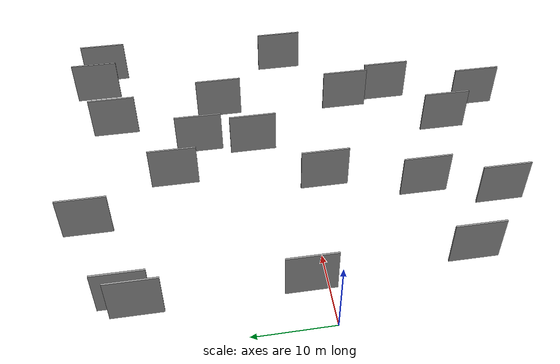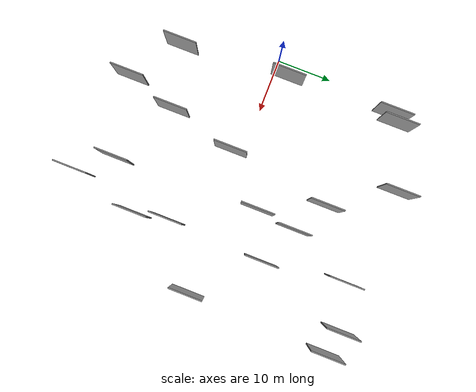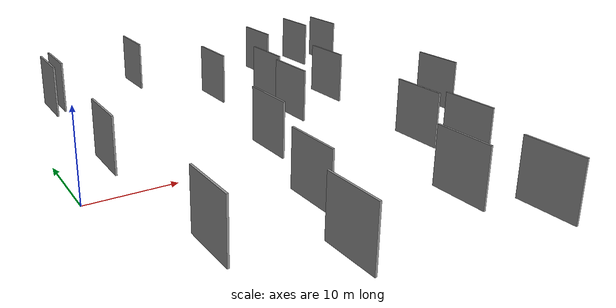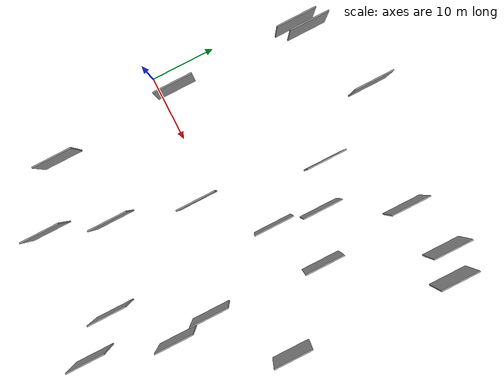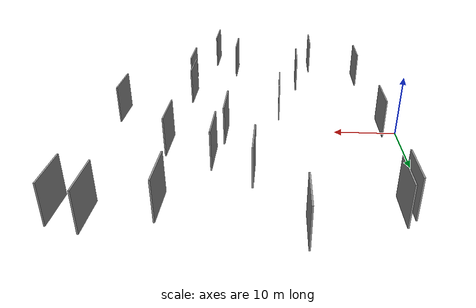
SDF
<sdf version="1.6">
 <world name="default">
  <scene>
   <sky><clouds><speed>12</speed></clouds></sky>
   <ambient>0.4 0.4 0.4 1</ambient>
   <background>0.7 0.7 0.7 1</background>
   <shadows>1</shadows>
  </scene>
  <gravity>0 0 -9.8066</gravity>
  <magnetic_field>6e-06 2.3e-05 -4.2e-05</magnetic_field>
  <physics default="0" name="default_physics" type="ode">
   <ode>
    <solver>
     <type>quick</type>
     <iters>10</iters>
     <sor>1.0</sor>
     <use_dynamic_moi_rescaling>0</use_dynamic_moi_rescaling>
    </solver>
    <constraints>
     <cfm>0</cfm>
     <erp>0.2</erp>
     <contact_max_correcting_vel>100</contact_max_correcting_vel>
     <contact_surface_layer>0.001</contact_surface_layer>
    </constraints>
   </ode>
   <max_step_size>0.004</max_step_size>
   <real_time_factor>1</real_time_factor>
   <real_time_update_rate>250</real_time_update_rate>
  </physics>
  <light name="sun" type="directional">
   <pose>0 0 10 0 0 0</pose>
   <diffuse>0.8 0.8 0.8 1</diffuse>
   <specular>0.2 0.2 0.2 1</specular>
   <attenuation>
    <range>1000</range>
    <constant>0.9</constant>
    <linear>0.01</linear>
    <quadratic>0.001</quadratic>
   </attenuation>
   <direction>-0.5 0.1 -0.9</direction>
  </light>
  <model name="grey_wall_1">
   <static>1</static>
   <pose>19.3405 -2.0208 2.5 0.000000 0.000000 1.570796</pose>
   <link name="link">
    <pose>0 0 3.00 0 0 0</pose>
    <collision name="collision"><geometry><box><size>6.00 0.2 6.00</size></box></geometry></collision>
    <visual name="visual">
     <cast_shadows>0</cast_shadows>
     <geometry><box><size>6.00 0.2 6.00</size></box></geometry>
     <material>
      <script>
       <uri>model://grey_wall/materials/scripts</uri>
       <uri>model://grey_wall/materials/textures</uri>
       <name>vrc/grey_wall</name>
      </script>
     </material>
    </visual>
   </link>
  </model>
  <model name="grey_wall_2">
   <static>1</static>
   <pose>35.4959 -13.6867 2.5 0.000000 0.000000 1.570796</pose>
   <link name="link">
    <pose>0 0 3.00 0 0 0</pose>
    <collision name="collision"><geometry><box><size>6.00 0.2 6.00</size></box></geometry></collision>
    <visual name="visual">
     <cast_shadows>0</cast_shadows>
     <geometry><box><size>6.00 0.2 6.00</size></box></geometry>
     <material>
      <script>
       <uri>model://grey_wall/materials/scripts</uri>
       <uri>model://grey_wall/materials/textures</uri>
       <name>vrc/grey_wall</name>
      </script>
     </material>
    </visual>
   </link>
  </model>
  <model name="grey_wall_3">
   <static>1</static>
   <pose>32.3080 -25.7244 2.5 0.000000 0.000000 1.570796</pose>
   <link name="link">
    <pose>0 0 3.00 0 0 0</pose>
    <collision name="collision"><geometry><box><size>6.00 0.2 6.00</size></box></geometry></collision>
    <visual name="visual">
     <cast_shadows>0</cast_shadows>
     <geometry><box><size>6.00 0.2 6.00</size></box></geometry>
     <material>
      <script>
       <uri>model://grey_wall/materials/scripts</uri>
       <uri>model://grey_wall/materials/textures</uri>
       <name>vrc/grey_wall</name>
      </script>
     </material>
    </visual>
   </link>
  </model>
  <model name="grey_wall_4">
   <static>1</static>
   <pose>22.5257 16.6328 2.5 0.000000 0.000000 1.570796</pose>
   <link name="link">
    <pose>0 0 3.00 0 0 0</pose>
    <collision name="collision"><geometry><box><size>6.00 0.2 6.00</size></box></geometry></collision>
    <visual name="visual">
     <cast_shadows>0</cast_shadows>
     <geometry><box><size>6.00 0.2 6.00</size></box></geometry>
     <material>
      <script>
       <uri>model://grey_wall/materials/scripts</uri>
       <uri>model://grey_wall/materials/textures</uri>
       <name>vrc/grey_wall</name>
      </script>
     </material>
    </visual>
   </link>
  </model>
  <model name="grey_wall_5">
   <static>1</static>
   <pose>27.3279 6.0161 2.5 0.000000 0.000000 1.570796</pose>
   <link name="link">
    <pose>0 0 3.00 0 0 0</pose>
    <collision name="collision"><geometry><box><size>6.00 0.2 6.00</size></box></geometry></collision>
    <visual name="visual">
     <cast_shadows>0</cast_shadows>
     <geometry><box><size>6.00 0.2 6.00</size></box></geometry>
     <material>
      <script>
       <uri>model://grey_wall/materials/scripts</uri>
       <uri>model://grey_wall/materials/textures</uri>
       <name>vrc/grey_wall</name>
      </script>
     </material>
    </visual>
   </link>
  </model>
  <model name="grey_wall_6">
   <static>1</static>
   <pose>35.3297 9.7608 2.5 0.000000 0.000000 1.570796</pose>
   <link name="link">
    <pose>0 0 3.00 0 0 0</pose>
    <collision name="collision"><geometry><box><size>6.00 0.2 6.00</size></box></geometry></collision>
    <visual name="visual">
     <cast_shadows>0</cast_shadows>
     <geometry><box><size>6.00 0.2 6.00</size></box></geometry>
     <material>
      <script>
       <uri>model://grey_wall/materials/scripts</uri>
       <uri>model://grey_wall/materials/textures</uri>
       <name>vrc/grey_wall</name>
      </script>
     </material>
    </visual>
   </link>
  </model>
  <model name="grey_wall_7">
   <static>1</static>
   <pose>34.4608 -7.7306 2.5 0.000000 0.000000 1.570796</pose>
   <link name="link">
    <pose>0 0 3.00 0 0 0</pose>
    <collision name="collision"><geometry><box><size>6.00 0.2 6.00</size></box></geometry></collision>
    <visual name="visual">
     <cast_shadows>0</cast_shadows>
     <geometry><box><size>6.00 0.2 6.00</size></box></geometry>
     <material>
      <script>
       <uri>model://grey_wall/materials/scripts</uri>
       <uri>model://grey_wall/materials/textures</uri>
       <name>vrc/grey_wall</name>
      </script>
     </material>
    </visual>
   </link>
  </model>
  <model name="grey_wall_8">
   <static>1</static>
   <pose>41.4975 26.4178 2.5 0.000000 0.000000 1.570796</pose>
   <link name="link">
    <pose>0 0 3.00 0 0 0</pose>
    <collision name="collision"><geometry><box><size>6.00 0.2 6.00</size></box></geometry></collision>
    <visual name="visual">
     <cast_shadows>0</cast_shadows>
     <geometry><box><size>6.00 0.2 6.00</size></box></geometry>
     <material>
      <script>
       <uri>model://grey_wall/materials/scripts</uri>
       <uri>model://grey_wall/materials/textures</uri>
       <name>vrc/grey_wall</name>
      </script>
     </material>
    </visual>
   </link>
  </model>
  <model name="grey_wall_9">
   <static>1</static>
   <pose>3.4852 2.5388 2.5 0.000000 0.000000 1.570796</pose>
   <link name="link">
    <pose>0 0 3.00 0 0 0</pose>
    <collision name="collision"><geometry><box><size>6.00 0.2 6.00</size></box></geometry></collision>
    <visual name="visual">
     <cast_shadows>0</cast_shadows>
     <geometry><box><size>6.00 0.2 6.00</size></box></geometry>
     <material>
      <script>
       <uri>model://grey_wall/materials/scripts</uri>
       <uri>model://grey_wall/materials/textures</uri>
       <name>vrc/grey_wall</name>
      </script>
     </material>
    </visual>
   </link>
  </model>
  <model name="grey_wall_10">
   <static>1</static>
   <pose>33.4839 24.0221 2.5 0.000000 0.000000 1.570796</pose>
   <link name="link">
    <pose>0 0 3.00 0 0 0</pose>
    <collision name="collision"><geometry><box><size>6.00 0.2 6.00</size></box></geometry></collision>
    <visual name="visual">
     <cast_shadows>0</cast_shadows>
     <geometry><box><size>6.00 0.2 6.00</size></box></geometry>
     <material>
      <script>
       <uri>model://grey_wall/materials/scripts</uri>
       <uri>model://grey_wall/materials/textures</uri>
       <name>vrc/grey_wall</name>
      </script>
     </material>
    </visual>
   </link>
  </model>
  <model name="grey_wall_11">
   <static>1</static>
   <pose>4.4653 23.2430 2.5 0.000000 0.000000 1.570796</pose>
   <link name="link">
    <pose>0 0 3.00 0 0 0</pose>
    <collision name="collision"><geometry><box><size>6.00 0.2 6.00</size></box></geometry></collision>
    <visual name="visual">
     <cast_shadows>0</cast_shadows>
     <geometry><box><size>6.00 0.2 6.00</size></box></geometry>
     <material>
      <script>
       <uri>model://grey_wall/materials/scripts</uri>
       <uri>model://grey_wall/materials/textures</uri>
       <name>vrc/grey_wall</name>
      </script>
     </material>
    </visual>
   </link>
  </model>
  <model name="grey_wall_12">
   <static>1</static>
   <pose>27.8571 -20.1355 2.5 0.000000 0.000000 1.570796</pose>
   <link name="link">
    <pose>0 0 3.00 0 0 0</pose>
    <collision name="collision"><geometry><box><size>6.00 0.2 6.00</size></box></geometry></collision>
    <visual name="visual">
     <cast_shadows>0</cast_shadows>
     <geometry><box><size>6.00 0.2 6.00</size></box></geometry>
     <material>
      <script>
       <uri>model://grey_wall/materials/scripts</uri>
       <uri>model://grey_wall/materials/textures</uri>
       <name>vrc/grey_wall</name>
      </script>
     </material>
    </visual>
   </link>
  </model>
  <model name="grey_wall_13">
   <static>1</static>
   <pose>16.2853 -14.1165 2.5 0.000000 0.000000 1.570796</pose>
   <link name="link">
    <pose>0 0 3.00 0 0 0</pose>
    <collision name="collision"><geometry><box><size>6.00 0.2 6.00</size></box></geometry></collision>
    <visual name="visual">
     <cast_shadows>0</cast_shadows>
     <geometry><box><size>6.00 0.2 6.00</size></box></geometry>
     <material>
      <script>
       <uri>model://grey_wall/materials/scripts</uri>
       <uri>model://grey_wall/materials/textures</uri>
       <name>vrc/grey_wall</name>
      </script>
     </material>
    </visual>
   </link>
  </model>
  <model name="grey_wall_14">
   <static>1</static>
   <pose>5.0337 -16.8776 2.5 0.000000 0.000000 1.570796</pose>
   <link name="link">
    <pose>0 0 3.00 0 0 0</pose>
    <collision name="collision"><geometry><box><size>6.00 0.2 6.00</size></box></geometry></collision>
    <visual name="visual">
     <cast_shadows>0</cast_shadows>
     <geometry><box><size>6.00 0.2 6.00</size></box></geometry>
     <material>
      <script>
       <uri>model://grey_wall/materials/scripts</uri>
       <uri>model://grey_wall/materials/textures</uri>
       <name>vrc/grey_wall</name>
      </script>
     </material>
    </visual>
   </link>
  </model>
  <model name="grey_wall_15">
   <static>1</static>
   <pose>15.8202 27.4158 2.5 0.000000 0.000000 1.570796</pose>
   <link name="link">
    <pose>0 0 3.00 0 0 0</pose>
    <collision name="collision"><geometry><box><size>6.00 0.2 6.00</size></box></geometry></collision>
    <visual name="visual">
     <cast_shadows>0</cast_shadows>
     <geometry><box><size>6.00 0.2 6.00</size></box></geometry>
     <material>
      <script>
       <uri>model://grey_wall/materials/scripts</uri>
       <uri>model://grey_wall/materials/textures</uri>
       <name>vrc/grey_wall</name>
      </script>
     </material>
    </visual>
   </link>
  </model>
  <model name="grey_wall_16">
   <static>1</static>
   <pose>44.8562 0.0104 2.5 0.000000 0.000000 1.570796</pose>
   <link name="link">
    <pose>0 0 3.00 0 0 0</pose>
    <collision name="collision"><geometry><box><size>6.00 0.2 6.00</size></box></geometry></collision>
    <visual name="visual">
     <cast_shadows>0</cast_shadows>
     <geometry><box><size>6.00 0.2 6.00</size></box></geometry>
     <material>
      <script>
       <uri>model://grey_wall/materials/scripts</uri>
       <uri>model://grey_wall/materials/textures</uri>
       <name>vrc/grey_wall</name>
      </script>
     </material>
    </visual>
   </link>
  </model>
  <model name="grey_wall_17">
   <static>1</static>
   <pose>28.3500 13.0089 2.5 0.000000 0.000000 1.570796</pose>
   <link name="link">
    <pose>0 0 3.00 0 0 0</pose>
    <collision name="collision"><geometry><box><size>6.00 0.2 6.00</size></box></geometry></collision>
    <visual name="visual">
     <cast_shadows>0</cast_shadows>
     <geometry><box><size>6.00 0.2 6.00</size></box></geometry>
     <material>
      <script>
       <uri>model://grey_wall/materials/scripts</uri>
       <uri>model://grey_wall/materials/textures</uri>
       <name>vrc/grey_wall</name>
      </script>
     </material>
    </visual>
   </link>
  </model>
  <model name="grey_wall_18">
   <static>1</static>
   <pose>45.8067 25.3126 2.5 0.000000 0.000000 1.570796</pose>
   <link name="link">
    <pose>0 0 3.00 0 0 0</pose>
    <collision name="collision"><geometry><box><size>6.00 0.2 6.00</size></box></geometry></collision>
    <visual name="visual">
     <cast_shadows>0</cast_shadows>
     <geometry><box><size>6.00 0.2 6.00</size></box></geometry>
     <material>
      <script>
       <uri>model://grey_wall/materials/scripts</uri>
       <uri>model://grey_wall/materials/textures</uri>
       <name>vrc/grey_wall</name>
      </script>
     </material>
    </visual>
   </link>
  </model>
  <model name="grey_wall_19">
   <static>1</static>
   <pose>3.1984 21.8559 2.5 0.000000 0.000000 1.570796</pose>
   <link name="link">
    <pose>0 0 3.00 0 0 0</pose>
    <collision name="collision"><geometry><box><size>6.00 0.2 6.00</size></box></geometry></collision>
    <visual name="visual">
     <cast_shadows>0</cast_shadows>
     <geometry><box><size>6.00 0.2 6.00</size></box></geometry>
     <material>
      <script>
       <uri>model://grey_wall/materials/scripts</uri>
       <uri>model://grey_wall/materials/textures</uri>
       <name>vrc/grey_wall</name>
      </script>
     </material>
    </visual>
   </link>
  </model>
  <model name="grey_wall_20">
   <static>1</static>
   <pose>13.4871 -23.1347 2.5 0.000000 0.000000 1.570796</pose>
   <link name="link">
    <pose>0 0 3.00 0 0 0</pose>
    <collision name="collision"><geometry><box><size>6.00 0.2 6.00</size></box></geometry></collision>
    <visual name="visual">
     <cast_shadows>0</cast_shadows>
     <geometry><box><size>6.00 0.2 6.00</size></box></geometry>
     <material>
      <script>
       <uri>model://grey_wall/materials/scripts</uri>
       <uri>model://grey_wall/materials/textures</uri>
       <name>vrc/grey_wall</name>
      </script>
     </material>
    </visual>
   </link>
  </model>
 </world>
</sdf>
